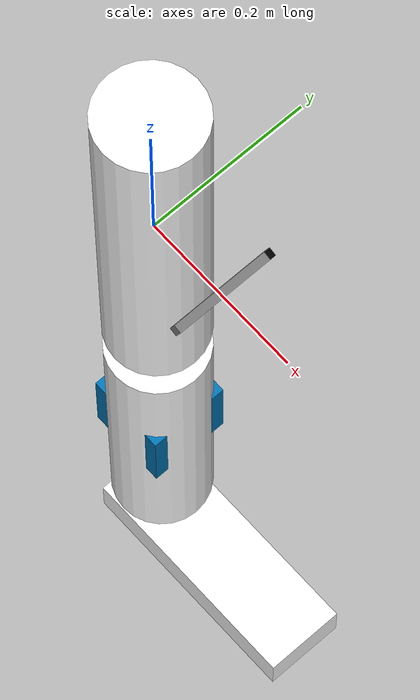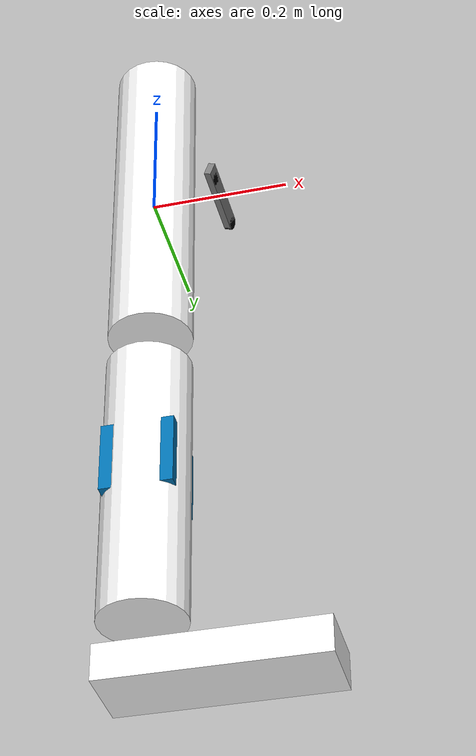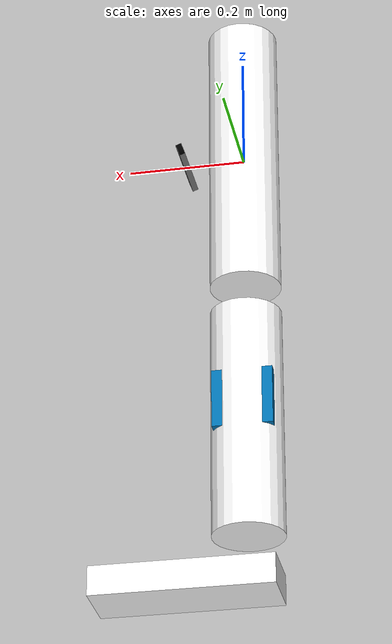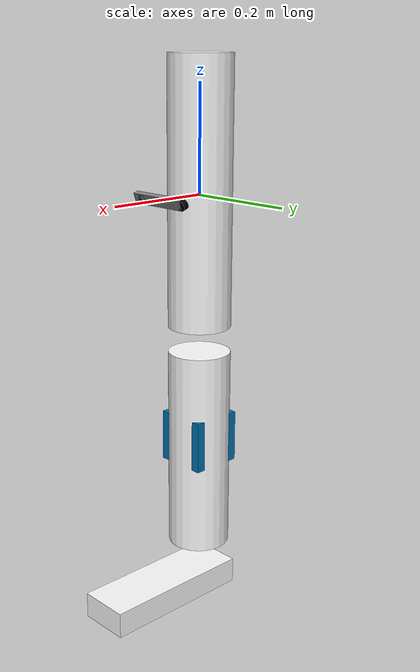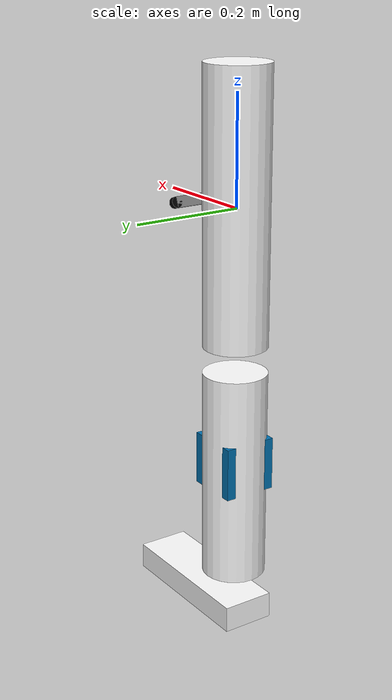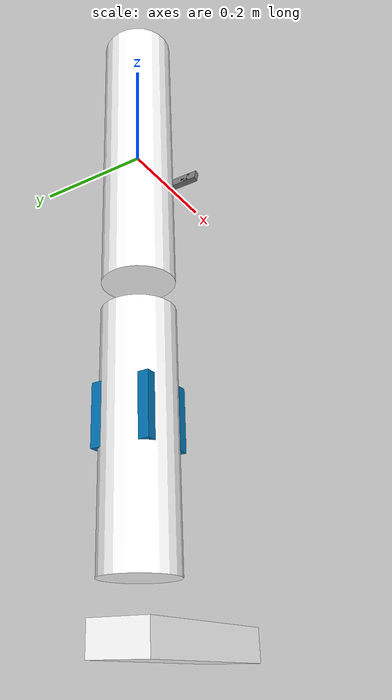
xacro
<?xml version="1.0"?>
<robot xmlns:xacro="http://www.ros.org/wiki/xacro" name="jetleg">
    <xacro:arg name="initial_positions_file" default="$(find jetleg_description)/config/initial_positions.yaml" />

    <xacro:include filename="$(find jetleg_description)/urdf/colors.xacro" />

    <!-- Import jetleg urdf file -->
    <xacro:include filename="$(find jetleg_description)/urdf/jetleg.xacro" />

    <!-- Import control_xacro -->
    <xacro:include filename="$(find jetleg_description)/ros2_control/jetleg.ros2_control.xacro" />

    <!-- Import camera model -->
    <xacro:include filename="$(find jetleg_description)/urdf/components/stereo_camera.xacro" />

    <xacro:jetleg_ros2_control name="JetlegSystem" initial_positions_file="$(arg initial_positions_file)" plugin="gazebo_ros2_control/GazeboSystem" id="" />

    <gazebo>
        <plugin filename="libgazebo_ros2_control.so" name="gazebo_ros2_control">
            <parameters>$(find jetleg_description)/ros2_control/ros2_controllers.yaml</parameters>

            <robot_param>robot_description</robot_param>
            <robot_param_node>robot_state_publisher</robot_param_node>
        </plugin>
    </gazebo>

    <!-- Add camera -->
    <xacro:stereo_camera baseline="0.1">
      <joint name="base_link_to_camera_base" type="fixed">
          <parent link="base_link" />
          <child link="camera_base" />
          <origin xyz="0.1 0 0" rpy="0 ${20*pi/180} 0" />
      </joint>
  </xacro:stereo_camera>

</robot>

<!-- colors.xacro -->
<robot xmlns:xacro="http://www.ros.org/wiki/xacro" name="colors">
    <material name="white">
        <color rgba="1 1 1 1"/>
    </material>
    <material name="black">
        <color rgba="0 0 0 1"/>
    </material>
    <material name="grey">
        <color rgba="0.5 0.5 0.5 1"/>
    </material>
    <material name="red">
        <color rgba="1 0 0 1"/>
    </material>
    <material name="red_transluscent">
        <color rgba="1 0 0 0.25"/>
    </material>
    <material name="white_transluscent">
        <color rgba="1 1 1 0.25"/>
    </material>
</robot>

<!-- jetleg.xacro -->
<robot xmlns:xacro="http://www.ros.org/wiki/xacro" name="jetleg">

    <link name="base_link">
    </link>

    <!-- Include the JetLeg -->
    <xacro:include filename="$(find jetleg_description)/urdf/components/jetleg.macro.xacro"/>

    <!-- Create a JetLeg -->
    <xacro:jetleg id="">
    </xacro:jetleg>

    <!-- Include components -->
    <xacro:include filename="$(find jetleg_description)/urdf/components/imu.xacro" />
    <xacro:jetleg_imu />

    <joint name="base_link_to_jetleg" type="fixed">
        <parent link="base_link" />
        <child link="thigh_" />
    </joint>
</robot>

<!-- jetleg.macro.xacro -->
<robot xmlns:xacro="http://www.ros.org/wiki/xacro" name="jetleg_macro">

    <xacro:property name="thigh_length" value="0.5" />
    <xacro:property name="shank_length" value="0.4" />
    <xacro:property name="knee_joint_radius" value="0.025" />
    <xacro:property name="ankle_joint_radius" value="0.025" />
    <xacro:property name="foot_length" value="0.3" />
    <xacro:property name="foot_width" value="0.1" />
    <xacro:property name="foot_height" value="0.05" />

    <xacro:property name="thigh_mass" value="1" />
    <xacro:property name="shank_mass" value="1" />
    <xacro:property name="foot_mass" value="1.5" />

    <xacro:macro name="jetleg" params="id">
        <link name="thigh_${id}">
            <visual>
                <geometry>
                    <cylinder length="${thigh_length}" radius="0.06"/>
                </geometry>
                <material name="white"/>
            </visual>
            <collision>
                <geometry>
                    <cylinder length="${thigh_length}" radius="0.06"/>
                </geometry>
            </collision>
            <inertial>
            <mass value="${thigh_mass}"/>
            <inertia ixx="1" ixy="0" ixz="0" iyy="1" iyz="0" izz="1"/>
        </inertial>
        </link>

        <link name="shank_${id}">
            <visual>
                <geometry>
                    <cylinder length="${shank_length}" radius="0.06"/>
                </geometry>
                <material name="white"/>
                <origin rpy="0 0 0" xyz="0 0 ${-shank_length/2-knee_joint_radius}"/>
            </visual>
            <collision>
                <geometry>
                    <cylinder length="${shank_length}" radius="0.06"/>
                </geometry>
                <origin rpy="0 0 0" xyz="0 0 ${-shank_length/2-knee_joint_radius}"/>
            </collision>
            <inertial>
                <mass value="${shank_mass}"/>
                <inertia ixx="1" ixy="0" ixz="0" iyy="1" iyz="0" izz="1"/>
                <origin rpy="0 0 0" xyz="0 0 ${-shank_length/2-knee_joint_radius}"/>
            </inertial>
        </link>

        <joint name="knee_joint_${id}" type="revolute">
            <origin rpy="0 0 0" xyz="0 0 ${-thigh_length/2-knee_joint_radius}"/>
            <parent link="thigh_${id}"/>
            <child link="shank_${id}"/>
            <axis xyz="0 1 0"/>
            <limit effort="100" lower="0.0" upper="2.5" velocity="10"/>
        </joint>

        <link name="foot_${id}">
            <contact>
                <lateral_friction value="100"/>
            </contact>

            <visual>
                <geometry>
                    <box size="${foot_length} ${foot_width} ${foot_height}"/>
                </geometry>
                <material name="white"/>
                <origin xyz="${(foot_length/2-0.05)} 0 ${-ankle_joint_radius-foot_height/2}"/>
            </visual>
            <collision>
                <geometry>
                    <box size="${foot_length} ${foot_width} ${foot_height}"/>
                </geometry>
                <origin xyz="${(foot_length/2-0.05)} 0 ${-ankle_joint_radius-foot_height/2}"/>
            </collision>
            <inertial>
                <mass value="${foot_mass}"/>
                <inertia ixx="1" ixy="0" ixz="0" iyy="1" iyz="0" izz="1"/>
                <origin xyz="${(foot_length/2-0.05)} 0 ${-ankle_joint_radius-foot_height/2}"/>
            </inertial>
        </link>

        <joint name="ankle_joint_${id}" type="revolute">
            <origin rpy="0 0 0" xyz="0 0 ${-(knee_joint_radius + shank_length + ankle_joint_radius)}"/>
            <parent link="shank_${id}"/>
            <child link="foot_${id}"/>
            <axis xyz="0 1 0"/>
            <limit effort="100" lower="-0.1" upper="0.5" velocity="10"/>
        </joint>

    </xacro:macro>
</robot>

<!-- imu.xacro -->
<robot xmlns:xacro="http://www.ros.org/wiki/xacro" name="imu0">

    <xacro:macro name="jetleg_imu" >
        <link name="shank_imu">
            <visual>
                <geometry>
                    <box size="0.1 0.1 0.1"/>
                </geometry>
            </visual>
            <inertial>
                <mass value="0.1"/>
                <inertia ixx="0.1" ixy="0" ixz="0" iyy="0.1" iyz="0" izz="0.1"/>
            </inertial>
        </link>
        <joint name="imu_to_shank" type="fixed">
            <origin rpy="0 0 0" xyz="0 0 -0.2" />
            <parent link="shank_" />
            <child link="shank_imu" />
        </joint>

        <gazebo reference="shank_imu">
            <gravity>true</gravity>
            <sensor name="imu_sensor" type="imu">
            <always_on>true</always_on>
            <update_rate>100</update_rate>
            <visualize>true</visualize>
            <topic>imu_topic</topic>
            <plugin filename="libgazebo_ros_imu_sensor.so" name="imu_plugin">
                <topicName>imu</topicName>
                <bodyName>shank_imu</bodyName>
                <updateRateHZ>10.0</updateRateHZ>
                <gaussianNoise>0.0</gaussianNoise>
                <xyzOffset>0 0 0</xyzOffset>
                <rpyOffset>0 0 0</rpyOffset>
                <frameName>shank_imu</frameName>
                <initialOrientationAsReference>false</initialOrientationAsReference>
            </plugin>
            <pose>0 0 0 0 0 0</pose>
            </sensor>
        </gazebo>
    </xacro:macro>

</robot>

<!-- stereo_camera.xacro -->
<robot xmlns:xacro="http://www.ros.org/wiki/xacro" name="stereo_camera">

    <!-- Specifies a macro for inserting a single stereovision camera into a xacro model description -->
    <xacro:macro name="stereo_camera" params="baseline *joint">
        <link name="camera_base">
            <visual>
                <geometry>
                    <box size="0.01 ${baseline+0.02} 0.02"/>
                </geometry>
                <origin xyz="0 0 0"/>
                <material name="grey"/>
            </visual>
            <inertial>
                <mass value="1" />
                <inertia ixx="1" ixy="0" ixz="0" iyy="1" iyz="0" izz="1" />
            </inertial>
        </link>

        <!-- Links representing the lenses -->
        <link name="camera_link">
            <visual>
                <geometry>
                    <cylinder radius="0.01" length="0.01"/>
                </geometry>
                <origin xyz="0.01 0 0" rpy="0 0 0" />
                <material name="black"/>
            </visual>
            <inertial>
                <mass value="1" />
                <inertia ixx="1" ixy="0" ixz="0" iyy="1" iyz="0" izz="1" />
            </inertial>
        </link>
        <link name="camera_link_right">
            <visual>
                <geometry>
                    <cylinder radius="0.01" length="0.01"/>
                </geometry>
                <origin xyz="0.01 0 0" rpy="0 0 0" />
                <material name="black"/>
            </visual>
            <inertial>
                <mass value="1" />
                <inertia ixx="1" ixy="0" ixz="0" iyy="1" iyz="0" izz="1" />
            </inertial>
        </link>

        <xacro:insert_block name="joint" />
        <joint name="camera_base_to_camera_link" type="fixed">
            <parent link="camera_base" />
            <child link="camera_link" />
            <origin xyz="0 ${-baseline/2} 0" rpy="${90*pi/180} 0 ${90*pi/180}" />
        </joint>
        <joint name="camera_base_to_camera_link_right" type="fixed">
            <parent link="camera_base" />
            <child link="camera_link_right" />
            <origin xyz="0 ${baseline/2} 0" rpy="${90*pi/180} 0 ${90*pi/180}" />
        </joint>

        <xacro:include filename="$(find jetleg_description)/urdf/gazebo/stereo_camera_gazebo.xacro" />
        <xacro:stereo_camera_gazebo baseline="${baseline}" />

    </xacro:macro>

</robot>

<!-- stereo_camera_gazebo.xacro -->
<robot xmlns:xacro="http://www.ros.org/wiki/xacro" name="stereo_camera_gazebo">

    <!-- Specifies a macro for inserting a single stereovision camera into a xacro model description -->
    <xacro:macro name="stereo_camera_gazebo" params="baseline">
        <gazebo reference="camera_base">
            <material>Gazebo/Grey</material>
        </gazebo>
        <gazebo reference="camera_link">
            <material>Gazebo/Black</material>
        </gazebo>
        <gazebo reference="camera_link_right">
            <material>Gazebo/Black</material>
        </gazebo>

        <!-- Used to align camera between Gazebo / ROS coordinate systems -->
        <link name="gazebo_camera_link">
        </link>

        <joint name="gazebo_camera_joint" type="fixed">
            <parent link="camera_link" />
            <child link="gazebo_camera_link" />
            <origin xyz="0 0 0" rpy="${pi/2} ${-pi/2} ${pi}" />
        </joint>

        <link name="gazebo_camera_optical_link">
        </link>

        <joint name="gazebo_camera_optical_joint" type="fixed">
            <parent link="gazebo_camera_link" />
            <child link="gazebo_camera_optical_link" />
            <origin xyz="0 0 0" rpy="${-pi/2} 0 ${-pi/2}" />
        </joint>

        <!-- Specifies configurations for simulating in Gazebo -->
        <gazebo reference="gazebo_camera_link">
            <sensor name="camera" type="depth">
                <visualize>true</visualize>
                <update_rate>60.0</update_rate>
                <camera name="head">
                    <horizontal_fov>${110*pi/180}</horizontal_fov>
                    <image>
                        <width>1280</width>
                        <height>720</height>
                        <format>R8G8B8</format>
                    </image>
                    <clip>
                        <near>1.0</near>
                        <far>20</far>
                    </clip>
                </camera>
                <plugin name="depth_camera_controller" filename="libgazebo_ros_camera.so">
                    <baseline>0.2</baseline>
                    <alwaysOn>true</alwaysOn>
                    <updateRate>0.0</updateRate>
                    <frame_name>gazebo_camera_optical_link</frame_name>
                    <pointCloudCutoff>0.1</pointCloudCutoff>
                    <pointCloudCutoffMax>10.0</pointCloudCutoffMax>
                    <distortionK1>0</distortionK1>
                    <distortionK2>0</distortionK2>
                    <distortionK3>0</distortionK3>
                    <distortionT1>0</distortionT1>
                    <distortionT2>0</distortionT2>
                    <CxPrime>0</CxPrime>
                    <Cx>0</Cx>
                    <Cy>0</Cy>
                    <min_depth>0.1</min_depth>
                    <max_depth>100.0</max_depth>
                    <focalLength>0</focalLength>
                    <hackBaseline>0</hackBaseline>
                </plugin>
            </sensor>
        </gazebo>

    </xacro:macro>

</robot>
